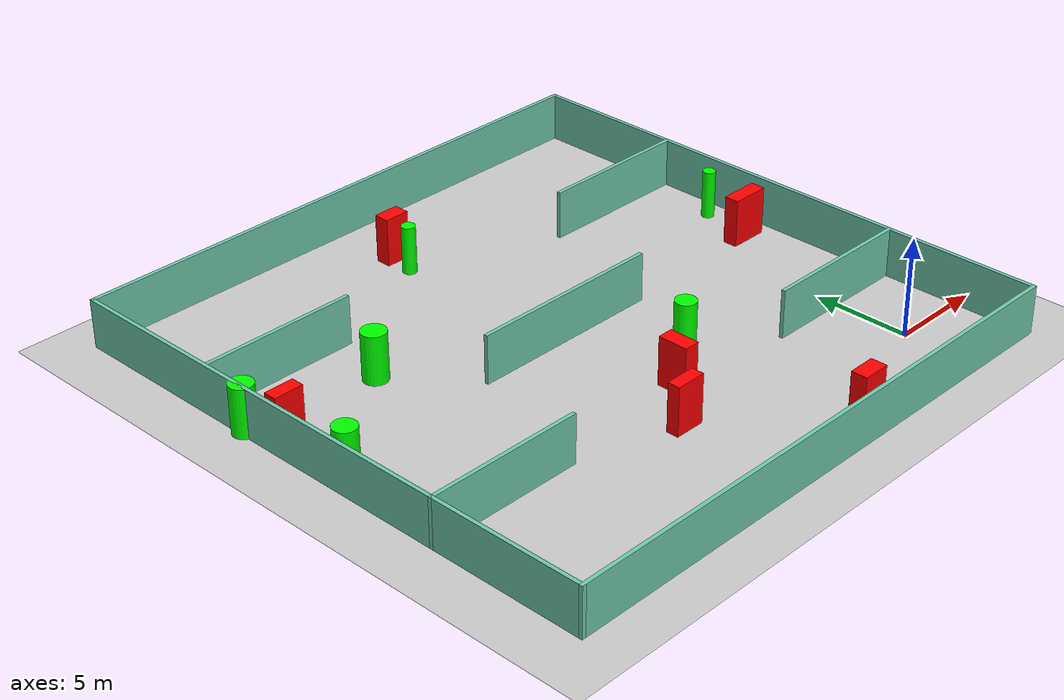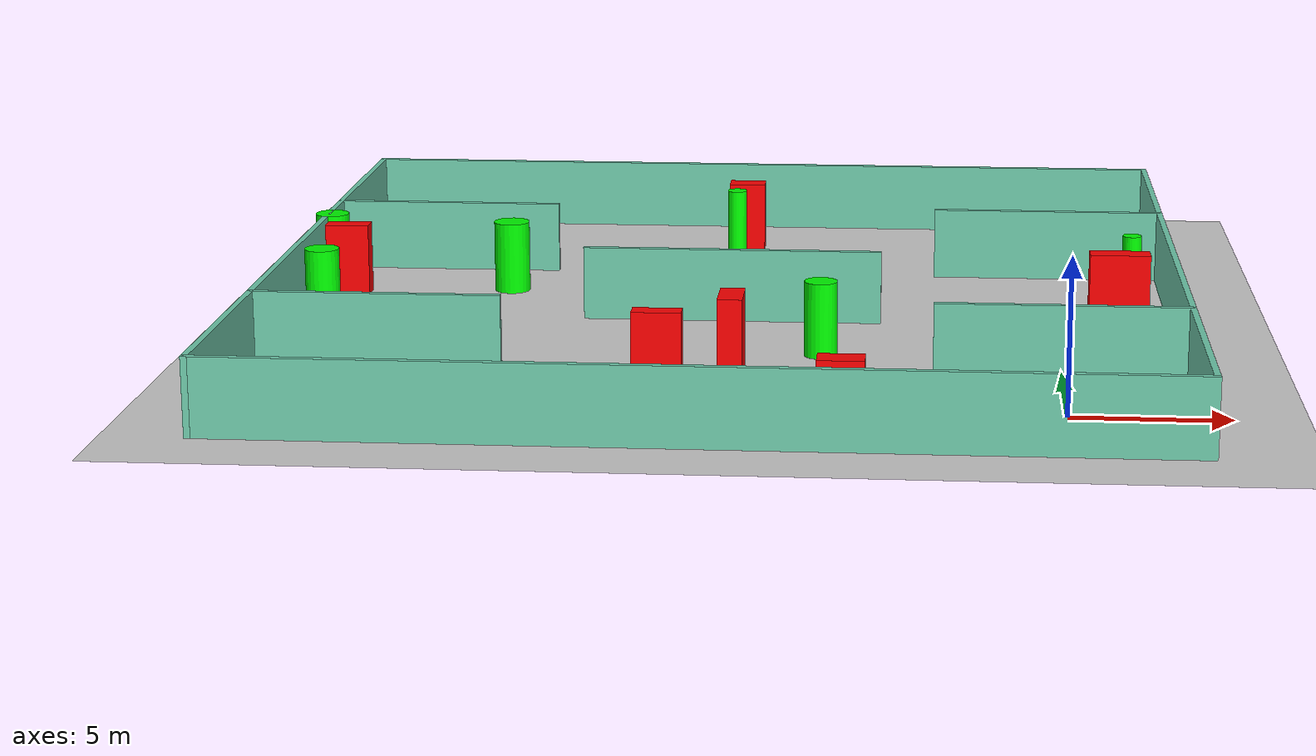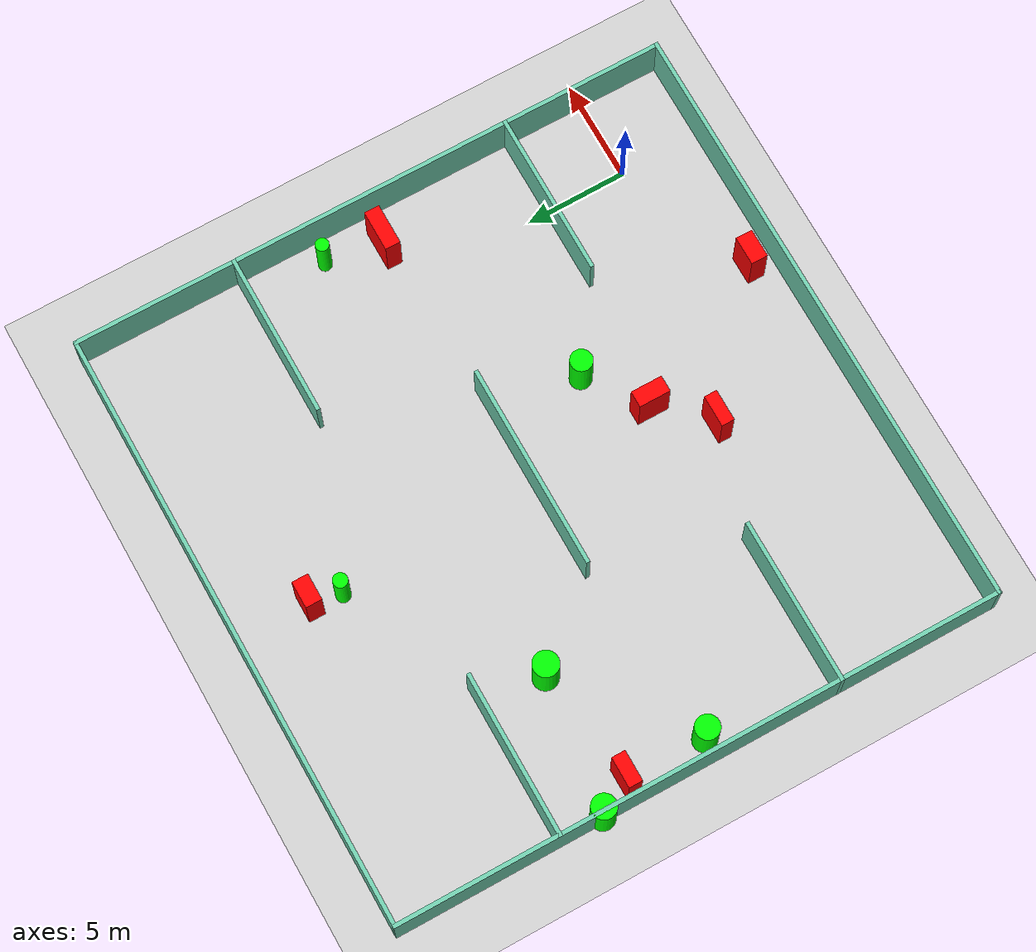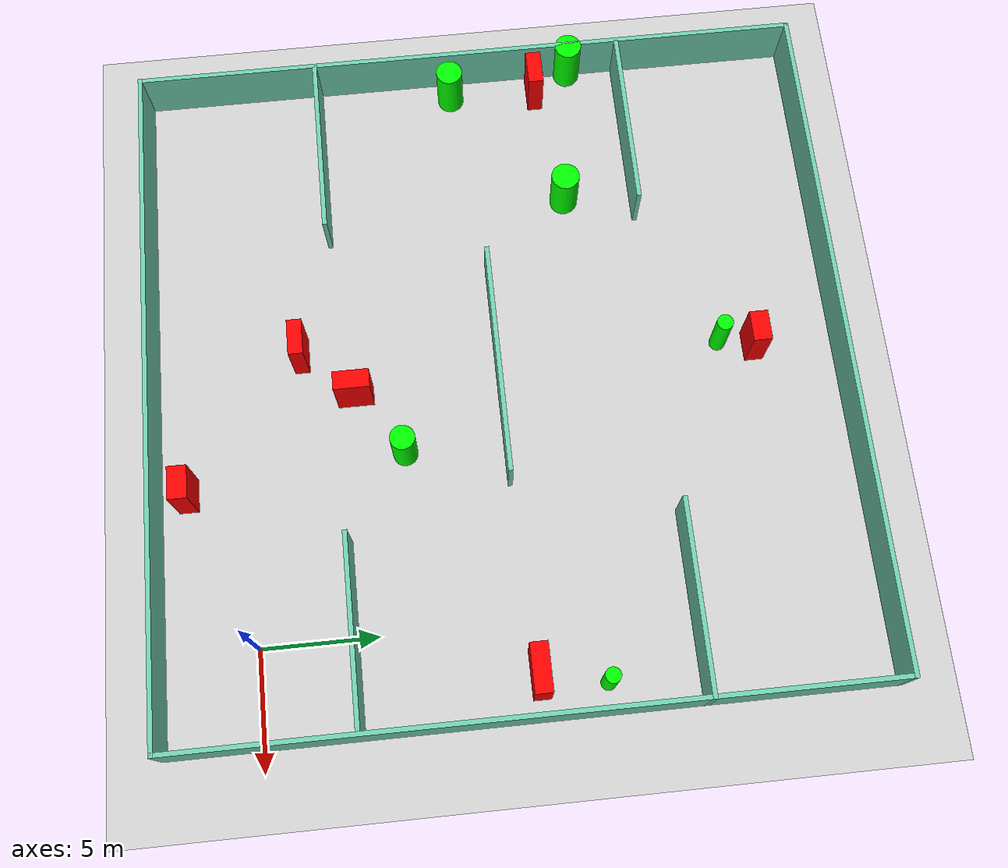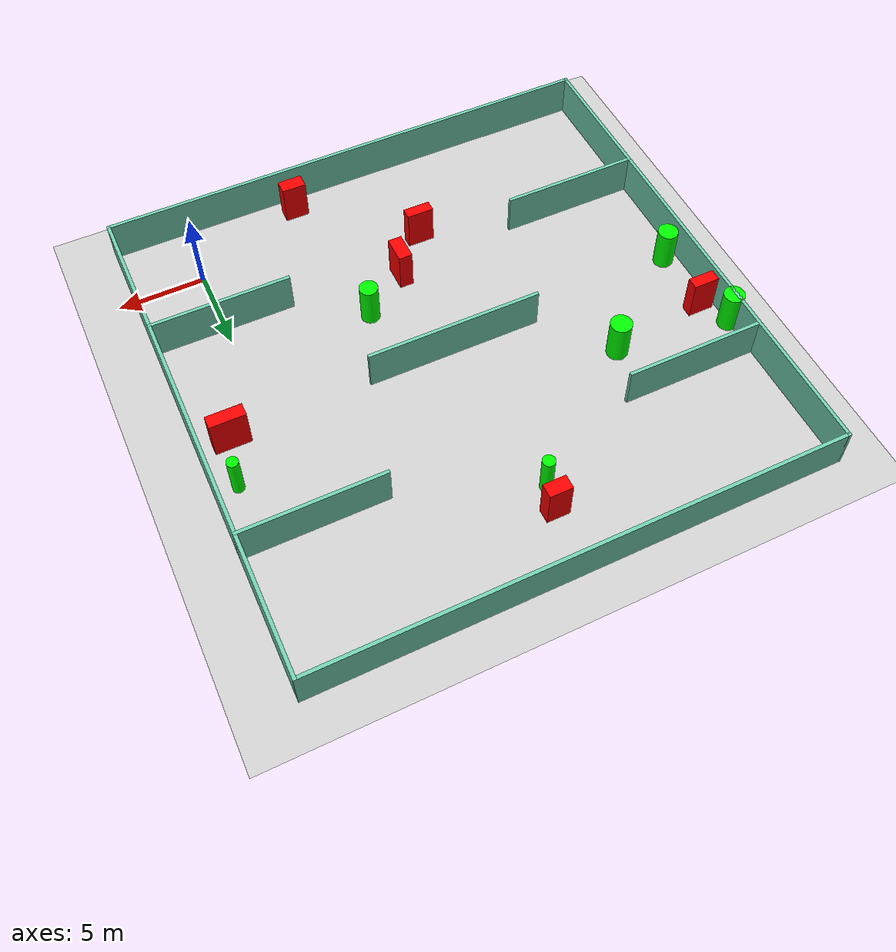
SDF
<sdf version="1.7">
 <world name="default">
  <light name="sun" type="directional">
   <pose>0 0 10 0 -0 0</pose>
   <diffuse>0.8 0.8 0.8 1</diffuse>
   <specular>0.2 0.2 0.2 1</specular>
   <attenuation>
    <range>1000</range>
    <constant>0.9</constant>
    <linear>0.01</linear>
    <quadratic>0.001</quadratic>
   </attenuation>
   <direction>-0.5 0.1 -0.9</direction>
   <spot><inner_angle>0</inner_angle><outer_angle>0</outer_angle><falloff>0</falloff></spot>
  </light>
  <model name="ground_plane">
   <static>1</static>
   <link name="link">
    <collision name="collision">
     <geometry><plane><normal>0 0 1</normal><size>100 100</size></plane></geometry>
     <surface>
      <contact><collide_bitmask>65535</collide_bitmask></contact>
      <friction><ode><mu>100</mu><mu2>50</mu2></ode></friction>
     </surface>
    </collision>
    <visual name="visual">
     <cast_shadows>0</cast_shadows>
     <geometry><plane><normal>0 0 1</normal><size>100 100</size></plane></geometry>
     <material>
      <script><uri>file://media/materials/scripts/gazebo.material</uri><name>Gazebo/Grey</name></script>
     </material>
    </visual>
   </link>
  </model>
  <gravity>0 0 -9.8</gravity>
  <magnetic_field>6e-06 2.3e-05 -4.2e-05</magnetic_field>
  <atmosphere type="adiabatic"/>
  <physics type="ode">
   <max_step_size>0.001</max_step_size>
   <real_time_factor>1</real_time_factor>
   <real_time_update_rate>1000</real_time_update_rate>
  </physics>
  <scene><ambient>0.4 0.4 0.4 1</ambient><background>0.7 0.7 0.7 1</background><shadows>1</shadows></scene>
  <spherical_coordinates>
   <surface_model>EARTH_WGS84</surface_model>
   <latitude_deg>0</latitude_deg>
   <longitude_deg>0</longitude_deg>
   <elevation>0</elevation>
   <heading_deg>0</heading_deg>
  </spherical_coordinates>
  <model name="my_base_walls">
   <link name="Wall_10">
    <collision name="Wall_10_Collision">
     <geometry><box><size>8.2 0.2 2.5</size></box></geometry>
     <pose>0 0 1.25 0 -0 0</pose>
    </collision>
    <visual name="Wall_10_Visual">
     <pose>0 0 1.25 0 -0 0</pose>
     <geometry><box><size>8.2 0.2 2.5</size></box></geometry>
     <material>
      <script><uri>file://media/materials/scripts/gazebo.material</uri><name>Gazebo/Grey</name></script>
      <ambient>0.435294 0.796078 0.67451 1</ambient>
     </material>
     <meta><layer>0</layer></meta>
    </visual>
    <pose>-11 -7 0 0 -0 0</pose>
   </link>
   <link name="Wall_12">
    <collision name="Wall_12_Collision">
     <geometry><box><size>8.2 0.2 2.5</size></box></geometry>
     <pose>0 0 1.25 0 -0 0</pose>
    </collision>
    <visual name="Wall_12_Visual">
     <pose>0 0 1.25 0 -0 0</pose>
     <geometry><box><size>8.2 0.2 2.5</size></box></geometry>
     <material>
      <script><uri>file://media/materials/scripts/gazebo.material</uri><name>Gazebo/Grey</name></script>
      <ambient>0.435294 0.796078 0.67451 1</ambient>
     </material>
     <meta><layer>0</layer></meta>
    </visual>
    <pose>-11 7 0 0 -0 0</pose>
   </link>
   <link name="Wall_14">
    <collision name="Wall_14_Collision">
     <geometry><box><size>8.2 0.2 2.5</size></box></geometry>
     <pose>0 0 1.25 0 -0 0</pose>
    </collision>
    <visual name="Wall_14_Visual">
     <pose>0 0 1.25 0 -0 0</pose>
     <geometry><box><size>8.2 0.2 2.5</size></box></geometry>
     <material>
      <script><uri>file://media/materials/scripts/gazebo.material</uri><name>Gazebo/Grey</name></script>
      <ambient>0.435294 0.796078 0.67451 1</ambient>
     </material>
     <meta><layer>0</layer></meta>
    </visual>
    <pose>11 7 0 0 -0 3.14159</pose>
   </link>
   <link name="Wall_16">
    <collision name="Wall_16_Collision">
     <geometry><box><size>10.2 0.2 2.5</size></box></geometry>
     <pose>0 0 1.25 0 -0 0</pose>
    </collision>
    <visual name="Wall_16_Visual">
     <pose>0 0 1.25 0 -0 0</pose>
     <geometry><box><size>10.2 0.2 2.5</size></box></geometry>
     <material>
      <script><uri>file://media/materials/scripts/gazebo.material</uri><name>Gazebo/Grey</name></script>
      <ambient>0.435294 0.796078 0.67451 1</ambient>
     </material>
     <meta><layer>0</layer></meta>
    </visual>
    <pose>0 0 0 0 -0 3.14159</pose>
   </link>
   <link name="Wall_2">
    <collision name="Wall_2_Collision">
     <geometry><box><size>30.2 0.2 2.5</size></box></geometry>
     <pose>0 0 1.25 0 -0 0</pose>
    </collision>
    <visual name="Wall_2_Visual">
     <pose>0 0 1.25 0 -0 0</pose>
     <geometry><box><size>30.2 0.2 2.5</size></box></geometry>
     <material>
      <script><uri>file://media/materials/scripts/gazebo.material</uri><name>Gazebo/Grey</name></script>
      <ambient>0.435294 0.796078 0.67451 1</ambient>
     </material>
     <meta><layer>0</layer></meta>
    </visual>
    <pose>0 -15 0 0 -0 3.14159</pose>
   </link>
   <link name="Wall_3">
    <collision name="Wall_3_Collision">
     <geometry><box><size>30.2 0.2 2.5</size></box></geometry>
     <pose>0 0 1.25 0 -0 0</pose>
    </collision>
    <visual name="Wall_3_Visual">
     <pose>0 0 1.25 0 -0 0</pose>
     <geometry><box><size>30.2 0.2 2.5</size></box></geometry>
     <material>
      <script><uri>file://media/materials/scripts/gazebo.material</uri><name>Gazebo/Grey</name></script>
      <ambient>0.435294 0.796078 0.67451 1</ambient>
     </material>
     <meta><layer>0</layer></meta>
    </visual>
    <pose>-15 0 0 0 -0 1.5708</pose>
   </link>
   <link name="Wall_4">
    <collision name="Wall_4_Collision">
     <geometry><box><size>30.2 0.2 2.5</size></box></geometry>
     <pose>0 0 1.25 0 -0 0</pose>
    </collision>
    <visual name="Wall_4_Visual">
     <pose>0 0 1.25 0 -0 0</pose>
     <geometry><box><size>30.2 0.2 2.5</size></box></geometry>
     <material>
      <script><uri>file://media/materials/scripts/gazebo.material</uri><name>Gazebo/Grey</name></script>
      <ambient>0.435294 0.796078 0.67451 1</ambient>
     </material>
     <meta><layer>0</layer></meta>
    </visual>
    <pose>0 15 0 0 -0 0</pose>
   </link>
   <link name="Wall_6">
    <collision name="Wall_6_Collision">
     <geometry><box><size>30.2 0.2 2.5</size></box></geometry>
     <pose>0 0 1.25 0 -0 0</pose>
    </collision>
    <visual name="Wall_6_Visual">
     <pose>0 0 1.25 0 -0 0</pose>
     <geometry><box><size>30.2 0.2 2.5</size></box></geometry>
     <material>
      <script><uri>file://media/materials/scripts/gazebo.material</uri><name>Gazebo/Grey</name></script>
      <ambient>0.435294 0.796078 0.67451 1</ambient>
     </material>
     <meta><layer>0</layer></meta>
    </visual>
    <pose>15 0 0 0 -0 1.5708</pose>
   </link>
   <link name="Wall_8">
    <collision name="Wall_8_Collision">
     <geometry><box><size>8.2 0.2 2.5</size></box></geometry>
     <pose>0 0 1.25 0 -0 0</pose>
    </collision>
    <visual name="Wall_8_Visual">
     <pose>0 0 1.25 0 -0 0</pose>
     <geometry><box><size>8.2 0.2 2.5</size></box></geometry>
     <material>
      <script><uri>file://media/materials/scripts/gazebo.material</uri><name>Gazebo/Grey</name></script>
      <ambient>0.435294 0.796078 0.67451 1</ambient>
     </material>
     <meta><layer>0</layer></meta>
    </visual>
    <pose>11 -7 0 0 -0 3.14159</pose>
   </link>
   <static>1</static>
   <pose>-11 11 0 0 -0 0</pose>
  </model>
  <model name="cylinder1">
   <static>1</static>
   <link name="link">
    <inertial>
     <mass>1</mass>
     <inertia><ixx>0.5</ixx><ixy>0</ixy><ixz>0</ixz><iyy>0.5</iyy><iyz>0</iyz><izz>1</izz></inertia>
    </inertial>
    <collision name="collision">
     <geometry><cylinder><radius>0.5401673881219755</radius><length>2.5</length></cylinder></geometry>
    </collision>
    <visual name="visual">
     <geometry><cylinder><radius>0.5401673881219755</radius><length>2.5</length></cylinder></geometry>
     <material>
      <ambient>0 1 0 1</ambient>
      <diffuse>0 1 0 1</diffuse>
      <specular>0.1 0.1 0.1 1</specular>
      <emissive>0 0 0 0</emissive>
     </material>
    </visual>
   </link>
   <pose>-7.773317612512521 6.641587231150911 1.25 0 0 0</pose>
  </model>
  <model name="cylinder2">
   <static>1</static>
   <link name="link">
    <inertial>
     <mass>1</mass>
     <inertia><ixx>0.5</ixx><ixy>0</ixy><ixz>0</ixz><iyy>0.5</iyy><iyz>0</iyz><izz>1</izz></inertia>
    </inertial>
    <collision name="collision">
     <geometry><cylinder><radius>0.35642489092037644</radius><length>2.5</length></cylinder></geometry>
    </collision>
    <visual name="visual">
     <geometry><cylinder><radius>0.35642489092037644</radius><length>2.5</length></cylinder></geometry>
     <material>
      <ambient>0 1 0 1</ambient>
      <diffuse>0 1 0 1</diffuse>
      <specular>0.1 0.1 0.1 1</specular>
      <emissive>0 0 0 0</emissive>
     </material>
    </visual>
   </link>
   <pose>-11.51588801988857 20.86277738611902 1.25 0 0 0</pose>
  </model>
  <model name="cylinder3">
   <static>1</static>
   <link name="link">
    <inertial>
     <mass>1</mass>
     <inertia><ixx>0.5</ixx><ixy>0</ixy><ixz>0</ixz><iyy>0.5</iyy><iyz>0</iyz><izz>1</izz></inertia>
    </inertial>
    <collision name="collision">
     <geometry><cylinder><radius>0.3296641386902078</radius><length>2.5</length></cylinder></geometry>
    </collision>
    <visual name="visual">
     <geometry><cylinder><radius>0.3296641386902078</radius><length>2.5</length></cylinder></geometry>
     <material>
      <ambient>0 1 0 1</ambient>
      <diffuse>0 1 0 1</diffuse>
      <specular>0.1 0.1 0.1 1</specular>
      <emissive>0 0 0 0</emissive>
     </material>
    </visual>
   </link>
   <pose>2.781377889284993 14.147012166871605 1.25 0 0 0</pose>
  </model>
  <model name="cylinder4">
   <static>1</static>
   <link name="link">
    <inertial>
     <mass>1</mass>
     <inertia><ixx>0.5</ixx><ixy>0</ixy><ixz>0</ixz><iyy>0.5</iyy><iyz>0</iyz><izz>1</izz></inertia>
    </inertial>
    <collision name="collision">
     <geometry><cylinder><radius>0.5888429458518643</radius><length>2.5</length></cylinder></geometry>
    </collision>
    <visual name="visual">
     <geometry><cylinder><radius>0.5888429458518643</radius><length>2.5</length></cylinder></geometry>
     <material>
      <ambient>0 1 0 1</ambient>
      <diffuse>0 1 0 1</diffuse>
      <specular>0.1 0.1 0.1 1</specular>
      <emissive>0 0 0 0</emissive>
     </material>
    </visual>
   </link>
   <pose>-25.02041298793956 10.146488282297604 1.25 0 0 0</pose>
  </model>
  <model name="cylinder5">
   <static>1</static>
   <link name="link">
    <inertial>
     <mass>1</mass>
     <inertia><ixx>0.5</ixx><ixy>0</ixy><ixz>0</ixz><iyy>0.5</iyy><iyz>0</iyz><izz>1</izz></inertia>
    </inertial>
    <collision name="collision">
     <geometry><cylinder><radius>0.6244638979926884</radius><length>2.5</length></cylinder></geometry>
    </collision>
    <visual name="visual">
     <geometry><cylinder><radius>0.6244638979926884</radius><length>2.5</length></cylinder></geometry>
     <material>
      <ambient>0 1 0 1</ambient>
      <diffuse>0 1 0 1</diffuse>
      <specular>0.1 0.1 0.1 1</specular>
      <emissive>0 0 0 0</emissive>
     </material>
    </visual>
   </link>
   <pose>-19.174456115304636 14.85539288183763 1.25 0 0 0</pose>
  </model>
  <model name="cylinder6">
   <static>1</static>
   <link name="link">
    <inertial>
     <mass>1</mass>
     <inertia><ixx>0.5</ixx><ixy>0</ixy><ixz>0</ixz><iyy>0.5</iyy><iyz>0</iyz><izz>1</izz></inertia>
    </inertial>
    <collision name="collision">
     <geometry><cylinder><radius>0.5977269256108528</radius><length>2.5</length></cylinder></geometry>
    </collision>
    <visual name="visual">
     <geometry><cylinder><radius>0.5977269256108528</radius><length>2.5</length></cylinder></geometry>
     <material>
      <ambient>0 1 0 1</ambient>
      <diffuse>0 1 0 1</diffuse>
      <specular>0.1 0.1 0.1 1</specular>
      <emissive>0 0 0 0</emissive>
     </material>
    </visual>
   </link>
   <pose>-25.858127275443735 15.75476968880293 1.25 0 0 0</pose>
  </model>
  <model name="box1">
   <static>1</static>
   <link name="link">
    <inertial>
     <mass>1</mass>
     <inertia><ixx>0.083</ixx><ixy>0</ixy><ixz>0</ixz><iyy>0.083</iyy><iyz>0</iyz><izz>0.083</izz></inertia>
    </inertial>
    <collision name="collision">
     <geometry><box><size>1.3261299631714938 0.8070532205202063 2.5</size></box></geometry>
    </collision>
    <visual name="visual">
     <geometry><box><size>1.3261299631714938 0.8070532205202063 2.5</size></box></geometry>
     <material>
      <ambient>1 0 0 1</ambient>
      <diffuse>1 0 0 1</diffuse>
      <specular>0.1 0.1 0.1 1</specular>
      <emissive>0 0 0 0</emissive>
     </material>
    </visual>
    <sensor name="my_contact" type="contact">
     <contact><collision>box_collision</collision><topic>__default_topic__</topic></contact>
    </sensor>
   </link>
   <pose>-11.223313055423354 22.35760152837619 1.25 0 0 0</pose>
  </model>
  <model name="box2">
   <static>1</static>
   <link name="link">
    <inertial>
     <mass>1</mass>
     <inertia><ixx>0.083</ixx><ixy>0</ixy><ixz>0</ixz><iyy>0.083</iyy><iyz>0</iyz><izz>0.083</izz></inertia>
    </inertial>
    <collision name="collision">
     <geometry><box><size>1.4209315711722925 0.8293532468568647 2.5</size></box></geometry>
    </collision>
    <visual name="visual">
     <geometry><box><size>1.4209315711722925 0.8293532468568647 2.5</size></box></geometry>
     <material>
      <ambient>1 0 0 1</ambient>
      <diffuse>1 0 0 1</diffuse>
      <specular>0.1 0.1 0.1 1</specular>
      <emissive>0 0 0 0</emissive>
     </material>
    </visual>
    <sensor name="my_contact" type="contact">
     <contact><collision>box_collision</collision><topic>__default_topic__</topic></contact>
    </sensor>
   </link>
   <pose>-6.794989042857477 -2.757327620533797 1.25 0 0 0</pose>
  </model>
  <model name="box3">
   <static>1</static>
   <link name="link">
    <inertial>
     <mass>1</mass>
     <inertia><ixx>0.083</ixx><ixy>0</ixy><ixz>0</ixz><iyy>0.083</iyy><iyz>0</iyz><izz>0.083</izz></inertia>
    </inertial>
    <collision name="collision">
     <geometry><box><size>1.5269631367757222 0.6802116960533389 2.5</size></box></geometry>
    </collision>
    <visual name="visual">
     <geometry><box><size>1.5269631367757222 0.6802116960533389 2.5</size></box></geometry>
     <material>
      <ambient>1 0 0 1</ambient>
      <diffuse>1 0 0 1</diffuse>
      <specular>0.1 0.1 0.1 1</specular>
      <emissive>0 0 0 0</emissive>
     </material>
    </visual>
    <sensor name="my_contact" type="contact">
     <contact><collision>box_collision</collision><topic>__default_topic__</topic></contact>
    </sensor>
   </link>
   <pose>-24.927395032667306 14.087197808629075 1.25 0 0 0</pose>
  </model>
  <model name="box4">
   <static>1</static>
   <link name="link">
    <inertial>
     <mass>1</mass>
     <inertia><ixx>0.083</ixx><ixy>0</ixy><ixz>0</ixz><iyy>0.083</iyy><iyz>0</iyz><izz>0.083</izz></inertia>
    </inertial>
    <collision name="collision">
     <geometry><box><size>2.0409879366354975 0.7581654092876322 2.5</size></box></geometry>
    </collision>
    <visual name="visual">
     <geometry><box><size>2.0409879366354975 0.7581654092876322 2.5</size></box></geometry>
     <material>
      <ambient>1 0 0 1</ambient>
      <diffuse>1 0 0 1</diffuse>
      <specular>0.1 0.1 0.1 1</specular>
      <emissive>0 0 0 0</emissive>
     </material>
    </visual>
    <sensor name="my_contact" type="contact">
     <contact><collision>box_collision</collision><topic>__default_topic__</topic></contact>
    </sensor>
   </link>
   <pose>2.190035800795606 11.374153925815742 1.25 0 0 0</pose>
  </model>
  <model name="box5">
   <static>1</static>
   <link name="link">
    <inertial>
     <mass>1</mass>
     <inertia><ixx>0.083</ixx><ixy>0</ixy><ixz>0</ixz><iyy>0.083</iyy><iyz>0</iyz><izz>0.083</izz></inertia>
    </inertial>
    <collision name="collision">
     <geometry><box><size>1.5752649847812132 0.6408295228519094 2.5</size></box></geometry>
    </collision>
    <visual name="visual">
     <geometry><box><size>1.5752649847812132 0.6408295228519094 2.5</size></box></geometry>
     <material>
      <ambient>1 0 0 1</ambient>
      <diffuse>1 0 0 1</diffuse>
      <specular>0.1 0.1 0.1 1</specular>
      <emissive>0 0 0 0</emissive>
     </material>
    </visual>
    <sensor name="my_contact" type="contact">
     <contact><collision>box_collision</collision><topic>__default_topic__</topic></contact>
    </sensor>
   </link>
   <pose>-12.728617921516005 2.401130270349471 1.25 0 0 0</pose>
  </model>
  <model name="box6">
   <static>1</static>
   <link name="link">
    <inertial>
     <mass>1</mass>
     <inertia><ixx>0.083</ixx><ixy>0</ixy><ixz>0</ixz><iyy>0.083</iyy><iyz>0</iyz><izz>0.083</izz></inertia>
    </inertial>
    <collision name="collision">
     <geometry><box><size>0.8065459782829452 1.5645642406889788 2.5</size></box></geometry>
    </collision>
    <visual name="visual">
     <geometry><box><size>0.8065459782829452 1.5645642406889788 2.5</size></box></geometry>
     <material>
      <ambient>1 0 0 1</ambient>
      <diffuse>1 0 0 1</diffuse>
      <specular>0.1 0.1 0.1 1</specular>
      <emissive>0 0 0 0</emissive>
     </material>
    </visual>
    <sensor name="my_contact" type="contact">
     <contact><collision>box_collision</collision><topic>__default_topic__</topic></contact>
    </sensor>
   </link>
   <pose>-10.561833734815032 4.673645733682555 1.25 0 0 0</pose>
  </model>
 </world>
</sdf>
